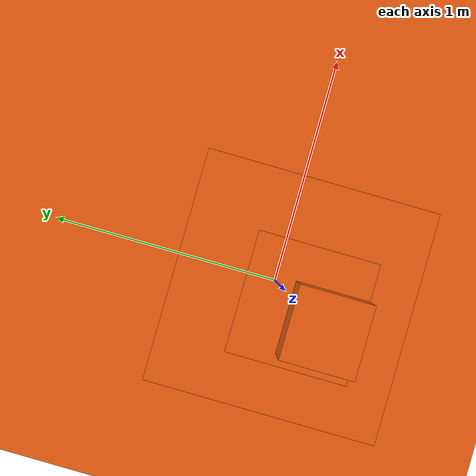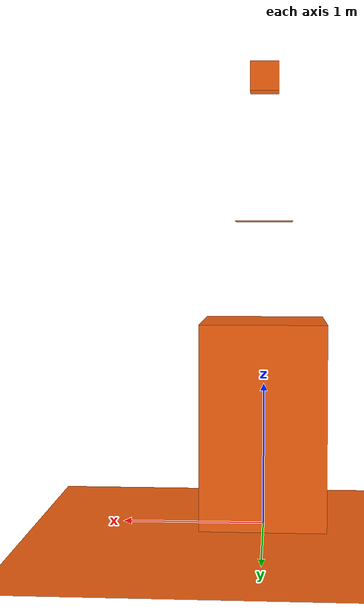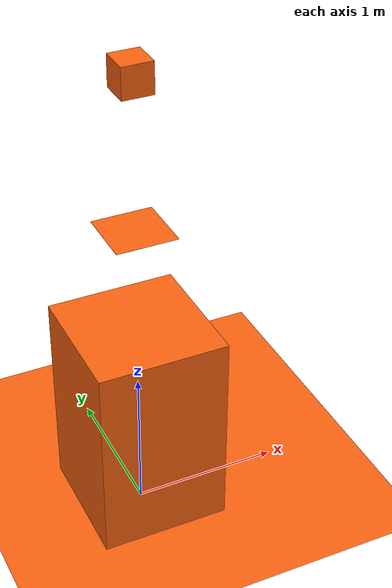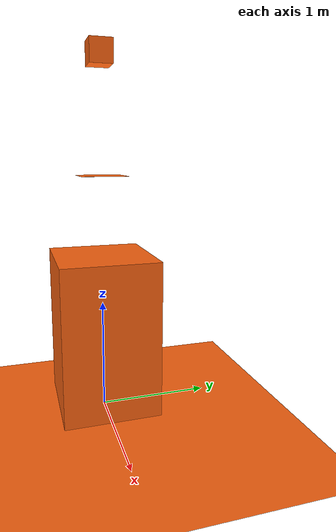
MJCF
<!-- 2025年2月20日
测试线性驱动关节 -->

<mujoco model="ant">
  <custom>
    <numeric data="0.0 0.0 0.55 1.0 0.0 0.0 0.0 0.0 1.0 0.0 -1.0 0.0 -1.0 0.0 1.0" name="init_qpos"/>
  </custom>

  <default>
    <joint   damping="0.1" stiffness="1" armature=".01" limited="true" solimplimit="0 .99 .01"/>
    <geom condim="3" density="5.0" friction="1.5 0.1 0.1" margin="0.01" rgba="0.97 0.38 0.06 1"/>
  </default>

  <compiler inertiafromgeom="true" angle="degree"/>

  <option timestep="0.016" iterations="50" tolerance="1e-10" solver="Newton" jacobian="dense" cone="pyramidal"/>

  <size nconmax="50" njmax="200" nstack="10000"/>
  <visual>
      <map force="0.1" zfar="30"/>
      <rgba haze="0.15 0.25 0.35 1"/>
      <quality shadowsize="2048"/>
      <global offwidth="800" offheight="800"/>
  </visual>

  <asset>
      <texture type="skybox" builtin="gradient" rgb1="0.3 0.5 0.7" rgb2="0 0 0" width="512" height="512"/>
      <texture name="texplane" type="2d" builtin="checker" rgb1=".2 .3 .4" rgb2=".1 0.15 0.2" width="512" height="512" mark="cross" markrgb=".8 .8 .8"/>
      <texture name="texgeom" type="cube" builtin="flat" mark="cross" width="127" height="1278"
          rgb1="0.8 0.6 0.4" rgb2="0.8 0.6 0.4" markrgb="1 1 1" random="0.01"/>

      <material name="matplane" reflectance="0.3" texture="texplane" texrepeat="1 1" texuniform="true"/>
      <material name="matgeom" texture="texgeom" texuniform="true" rgba="0.8 0.6 .4 1"/>
  </asset>

  <worldbody>
    <geom name="floor" pos="0 0 0" size="0 0 .25" type="plane" material="matplane" condim="3"/>

    <light directional="false" diffuse=".2 .2 .2" specular="0 0 0" pos="0 0 5" dir="0 0 -1" castshadow="false"/>
    <light mode="targetbodycom" target="torso" directional="false" diffuse=".8 .8 .8" specular="0.3 0.3 0.3" pos="0 0 4.0" dir="0 0 -1"/>

    <body name="torso" pos="0 0 0.75">

      <geom name="torso_geom" pos="0 0 0" size="0.43 0.43 0.7" type="box"/>

      <!-- 顶部加小球 -->
      <body name="board" pos = "0.0  0.0  1.4"  >
        <geom name="board" pos="0 0 0" size="0.2 0.2 0.0005" type="box" density='100'/>
        <body name="upper_head" pos="0.0 0.0 0.5">
          <joint axis="0 0 1" name="neck" pos="0.0 0.0 0.0" range="-0.01 0.01" type="slide" />
          <geom name="head_geom" pos="0  0  0.5" size="0.1 0.1 0.1" type="box" density='4000' />
        </body>
      </body>

    </body>
  </worldbody>

  <actuator>
    <motor ctrllimited="true" ctrlrange="-0.5 0.5" joint="neck" gear="15"/>
  </actuator>
</mujoco>
